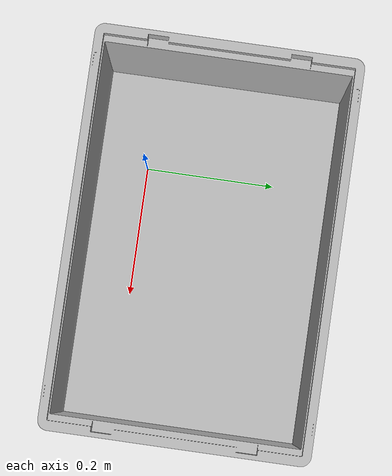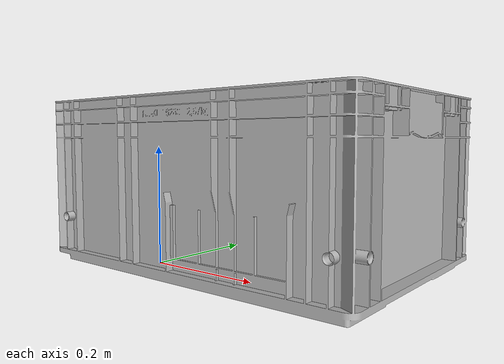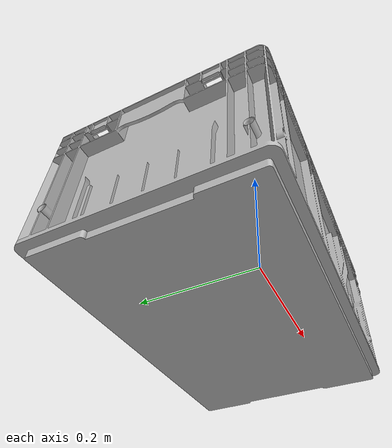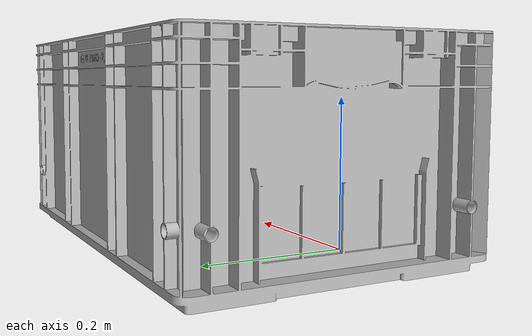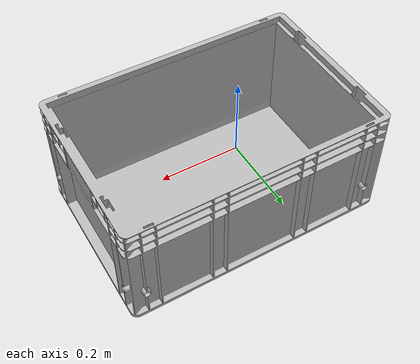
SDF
<?xml version="1.0" ?>
<sdf version="1.6">
  <model name="KLT">
    <link name="link">
      <pose>0 0 0 0 0 0</pose>
      <inertial>
        <mass>1.0</mass>
        <inertia>
          <ixx>0.60</ixx>
          <ixy>0</ixy>
          <ixz>0</ixz>
          <iyy>0.40</iyy>
          <iyz>0</iyz>
          <izz>0.28</izz>
        </inertia>
      </inertial>
      <collision name="collision">
        <pose>0 0 0 0 0 0</pose>
        <geometry>
          <mesh>
            <scale>0.001 0.001 0.001</scale>
            <uri>model://klt/meshes/klt.obj</uri>
          </mesh>
        </geometry>
      </collision>
      <visual name="visual">
        <geometry>
          <mesh>
            <scale>0.001 0.001 0.001</scale>
            <uri>model://klt/meshes/klt.obj</uri>
          </mesh>
        </geometry>
      </visual>
    </link>
  </model>
</sdf>
